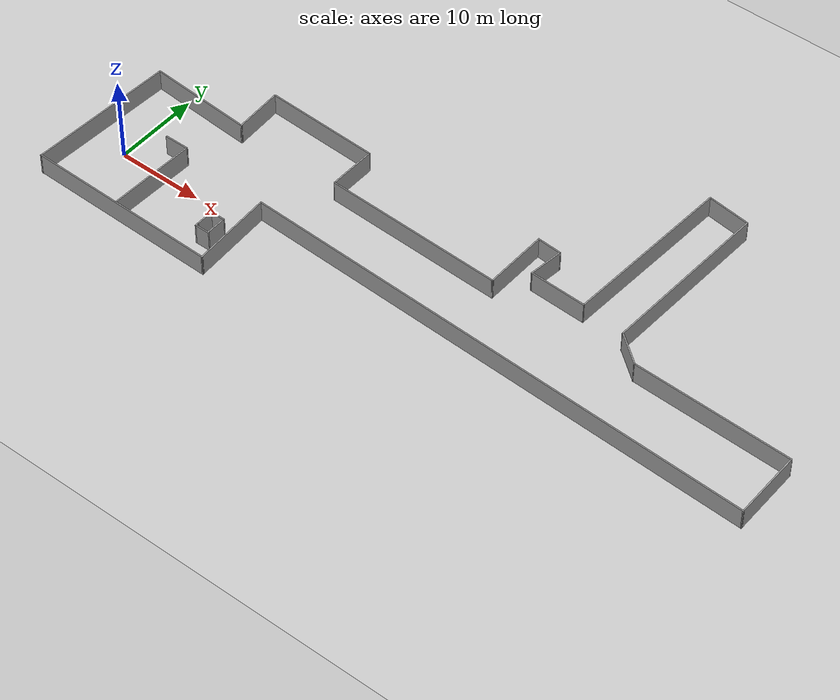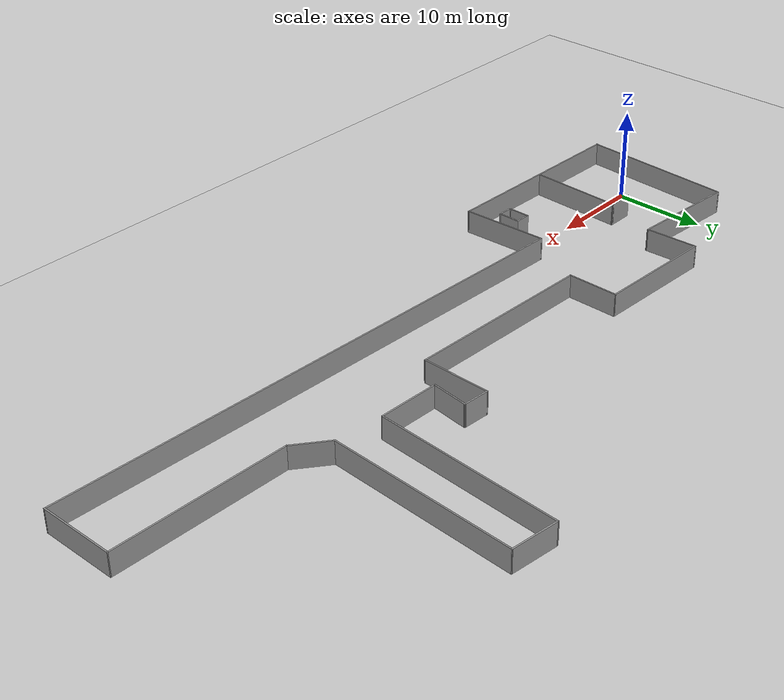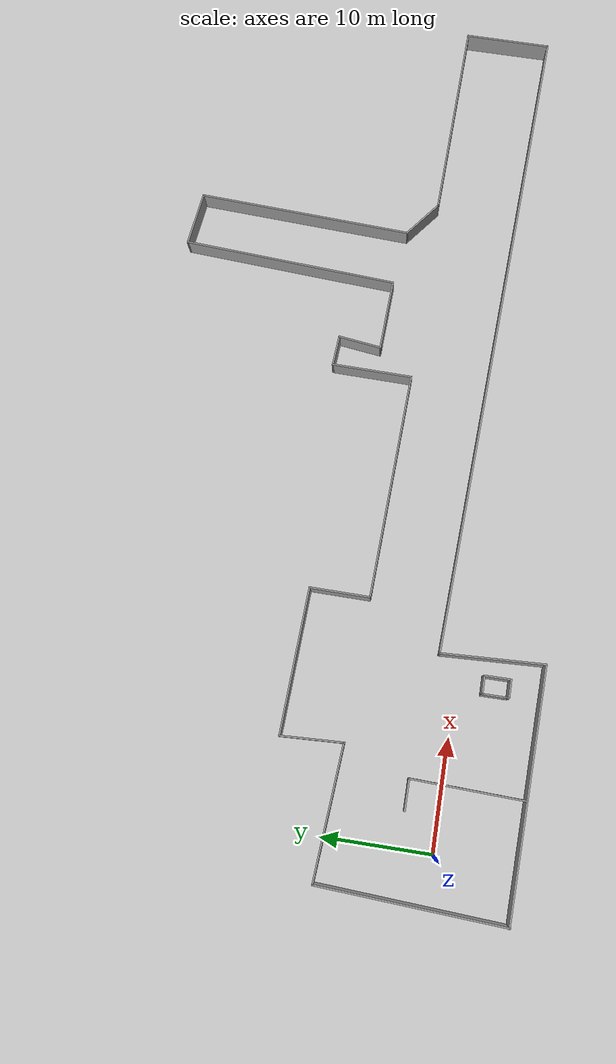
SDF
<sdf version="1.7">
 <world name="default">
  <light name="sun" type="directional">
   <pose>0 0 10 0 -0 0</pose>
   <diffuse>0.8 0.8 0.8 1</diffuse>
   <specular>0.2 0.2 0.2 1</specular>
   <attenuation>
    <range>1000</range>
    <constant>0.9</constant>
    <linear>0.01</linear>
    <quadratic>0.001</quadratic>
   </attenuation>
   <direction>-0.5 0.1 -0.9</direction>
   <spot><inner_angle>0</inner_angle><outer_angle>0</outer_angle><falloff>0</falloff></spot>
  </light>
  <model name="ground_plane">
   <pose>37 0 0 0 -0 0</pose>
   <static>1</static>
   <link name="link">
    <collision name="collision">
     <geometry><plane><normal>0 0 1</normal><size>100 100</size></plane></geometry>
     <surface><friction><ode><mu>100</mu><mu2>50</mu2></ode></friction></surface>
    </collision>
    <visual name="visual">
     <cast_shadows>0</cast_shadows>
     <geometry><plane><normal>0 0 1</normal><size>100 100</size></plane></geometry>
     <material>
      <script><uri>file://media/materials/scripts/gazebo.material</uri><name>Gazebo/Grey</name></script>
     </material>
    </visual>
   </link>
  </model>
  <gravity>0 0 -9.8</gravity>
  <magnetic_field>6e-06 2.3e-05 -4.2e-05</magnetic_field>
  <atmosphere type="adiabatic"/>
  <physics type="ode">
   <max_step_size>0.001</max_step_size>
   <real_time_factor>1</real_time_factor>
   <real_time_update_rate>1000</real_time_update_rate>
  </physics>
  <scene><ambient>0.4 0.4 0.4 1</ambient><background>0.7 0.7 0.7 1</background><shadows>1</shadows></scene>
  <audio><device>default</device></audio>
  <spherical_coordinates>
   <surface_model>EARTH_WGS84</surface_model>
   <latitude_deg>0</latitude_deg>
   <longitude_deg>0</longitude_deg>
   <elevation>0</elevation>
   <heading_deg>0</heading_deg>
  </spherical_coordinates>
  <model name="L1gazeboeditor">
   <pose>36.1632 11.5946 0 0 -0 0</pose>
   <link name="Wall_0">
    <collision name="Wall_0_Collision">
     <geometry><box><size>17.1252 0.15 2.5</size></box></geometry>
     <pose>0 0 1.25 0 -0 0</pose>
    </collision>
    <visual name="Wall_0_Visual">
     <pose>0 0 1.25 0 -0 0</pose>
     <geometry><box><size>17.1252 0.15 2.5</size></box></geometry>
     <material>
      <script><uri>file://media/materials/scripts/gazebo.material</uri><name>Gazebo/Grey</name></script>
      <ambient>1 1 1 1</ambient>
     </material>
     <meta><layer>0</layer></meta>
    </visual>
    <pose>-40.4165 -10.178 0 0 -0 1.5131</pose>
   </link>
   <link name="Wall_1">
    <collision name="Wall_1_Collision">
     <geometry><box><size>12.1719 0.15 2.5</size></box></geometry>
     <pose>0 0 1.25 0 -0 0</pose>
    </collision>
    <visual name="Wall_1_Visual">
     <pose>0 0 1.25 0 -0 0</pose>
     <geometry><box><size>12.1719 0.15 2.5</size></box></geometry>
     <material>
      <script><uri>file://media/materials/scripts/gazebo.material</uri><name>Gazebo/Grey</name></script>
      <ambient>1 1 1 1</ambient>
     </material>
     <meta><layer>0</layer></meta>
    </visual>
    <pose>-33.9314 -2.13275 0 0 -0 -0.071307</pose>
   </link>
   <link name="Wall_12">
    <collision name="Wall_12_Collision">
     <geometry><box><size>19.9454 0.15 2.5</size></box></geometry>
     <pose>0 0 1.25 0 -0 0</pose>
    </collision>
    <visual name="Wall_12_Visual">
     <pose>0 0 1.25 0 -0 0</pose>
     <geometry><box><size>19.9454 0.15 2.5</size></box></geometry>
     <material>
      <script><uri>file://media/materials/scripts/gazebo.material</uri><name>Gazebo/Grey</name></script>
      <ambient>1 1 1 1</ambient>
     </material>
     <meta><layer>0</layer></meta>
    </visual>
    <pose>14.9824 9.21623 0 0 -0 1.51204</pose>
   </link>
   <link name="Wall_13">
    <collision name="Wall_13_Collision">
     <geometry><box><size>5.08253 0.15 2.5</size></box></geometry>
     <pose>0 0 1.25 0 -0 0</pose>
    </collision>
    <visual name="Wall_13_Visual">
     <pose>0 0 1.25 0 -0 0</pose>
     <geometry><box><size>5.08253 0.15 2.5</size></box></geometry>
     <material>
      <script><uri>file://media/materials/scripts/gazebo.material</uri><name>Gazebo/Grey</name></script>
      <ambient>1 1 1 1</ambient>
     </material>
     <meta><layer>0</layer></meta>
    </visual>
    <pose>18.0109 18.791 0 0 -0 -0.124355</pose>
   </link>
   <link name="Wall_14">
    <collision name="Wall_14_Collision">
     <geometry><box><size>19.9326 0.15 2.5</size></box></geometry>
     <pose>0 0 1.25 0 -0 0</pose>
    </collision>
    <visual name="Wall_14_Visual">
     <pose>0 0 1.25 0 -0 0</pose>
     <geometry><box><size>19.9326 0.15 2.5</size></box></geometry>
     <material>
      <script><uri>file://media/materials/scripts/gazebo.material</uri><name>Gazebo/Grey</name></script>
      <ambient>1 1 1 1</ambient>
     </material>
     <meta><layer>0</layer></meta>
    </visual>
    <pose>19.9992 8.60442 0 0 -0 -1.6172</pose>
   </link>
   <link name="Wall_15">
    <collision name="Wall_15_Collision">
     <geometry><box><size>4.20133 0.15 2.5</size></box></geometry>
     <pose>0 0 1.25 0 -0 0</pose>
    </collision>
    <visual name="Wall_15_Visual">
     <pose>0 0 1.25 0 -0 0</pose>
     <geometry><box><size>4.20133 0.15 2.5</size></box></geometry>
     <material>
      <script><uri>file://media/materials/scripts/gazebo.material</uri><name>Gazebo/Grey</name></script>
      <ambient>1 1 1 1</ambient>
     </material>
     <meta><layer>0</layer></meta>
    </visual>
    <pose>21.1311 -2.53042 0 0 -0 -0.667666</pose>
   </link>
   <link name="Wall_16">
    <collision name="Wall_16_Collision">
     <geometry><box><size>18.3883 0.15 2.5</size></box></geometry>
     <pose>0 0 1.25 0 -0 0</pose>
    </collision>
    <visual name="Wall_16_Visual">
     <pose>0 0 1.25 0 -0 0</pose>
     <geometry><box><size>18.3883 0.15 2.5</size></box></geometry>
     <material>
      <script><uri>file://media/materials/scripts/gazebo.material</uri><name>Gazebo/Grey</name></script>
      <ambient>1 1 1 1</ambient>
     </material>
     <meta><layer>0</layer></meta>
    </visual>
    <pose>31.8376 -4.02934 0 0 -0 -0.026839</pose>
   </link>
   <link name="Wall_19">
    <collision name="Wall_19_Collision">
     <geometry><box><size>8 0.15 2.5</size></box></geometry>
     <pose>0 0 1.25 0 -0 0</pose>
    </collision>
    <visual name="Wall_19_Visual">
     <pose>0 0 1.25 0 -0 0</pose>
     <geometry><box><size>8 0.15 2.5</size></box></geometry>
     <material>
      <script><uri>file://media/materials/scripts/gazebo.material</uri><name>Gazebo/Grey</name></script>
      <ambient>1 1 1 1</ambient>
     </material>
     <meta><layer>0</layer></meta>
    </visual>
    <pose>40.9535 -8.19906 0 0 -0 -1.5708</pose>
   </link>
   <link name="Wall_2">
    <collision name="Wall_2_Collision">
     <geometry><box><size>5.78392 0.15 2.5</size></box></geometry>
     <pose>0 0 1.25 0 -0 0</pose>
    </collision>
    <visual name="Wall_2_Visual">
     <pose>0 0 1.25 0 -0 0</pose>
     <geometry><box><size>5.78392 0.15 2.5</size></box></geometry>
     <material>
      <script><uri>file://media/materials/scripts/gazebo.material</uri><name>Gazebo/Grey</name></script>
      <ambient>1 1 1 1</ambient>
     </material>
     <meta><layer>0</layer></meta>
    </visual>
    <pose>-28.058 0.253292 0 0 -0 1.61425</pose>
   </link>
   <link name="Wall_20">
    <collision name="Wall_20_Collision">
     <geometry><box><size>60.2606 0.15 2.5</size></box></geometry>
     <pose>0 0 1.25 0 -0 0</pose>
    </collision>
    <visual name="Wall_20_Visual">
     <pose>0 0 1.25 0 -0 0</pose>
     <geometry><box><size>60.2606 0.15 2.5</size></box></geometry>
     <material>
      <script><uri>file://media/materials/scripts/gazebo.material</uri><name>Gazebo/Grey</name></script>
      <ambient>1 1 1 1</ambient>
     </material>
     <meta><layer>0</layer></meta>
    </visual>
    <pose>10.9223 -10.9204 0 0 -0 3.10153</pose>
   </link>
   <link name="Wall_21">
    <collision name="Wall_21_Collision">
     <geometry><box><size>9.54441 0.15 2.5</size></box></geometry>
     <pose>0 0 1.25 0 -0 0</pose>
    </collision>
    <visual name="Wall_21_Visual">
     <pose>0 0 1.25 0 -0 0</pose>
     <geometry><box><size>9.54441 0.15 2.5</size></box></geometry>
     <material>
      <script><uri>file://media/materials/scripts/gazebo.material</uri><name>Gazebo/Grey</name></script>
      <ambient>1 1 1 1</ambient>
     </material>
     <meta><layer>0</layer></meta>
    </visual>
    <pose>-18.9066 -14.4096 0 0 -0 -1.52772</pose>
   </link>
   <link name="Wall_22">
    <collision name="Wall_22_Collision">
     <geometry><box><size>22.4059 0.15 2.5</size></box></geometry>
     <pose>0 0 1.25 0 -0 0</pose>
    </collision>
    <visual name="Wall_22_Visual">
     <pose>0 0 1.25 0 -0 0</pose>
     <geometry><box><size>22.4059 0.15 2.5</size></box></geometry>
     <material>
      <script><uri>file://media/materials/scripts/gazebo.material</uri><name>Gazebo/Grey</name></script>
      <ambient>1 1 1 1</ambient>
     </material>
     <meta><layer>0</layer></meta>
    </visual>
    <pose>-29.8296 -18.8597 0 0 -0 3.11978</pose>
   </link>
   <link name="Wall_27">
    <collision name="Wall_27_Collision">
     <geometry><box><size>10.3181 0.15 2.5</size></box></geometry>
     <pose>0 0 1.25 0 -0 0</pose>
    </collision>
    <visual name="Wall_27_Visual">
     <pose>0 0 1.25 0 -0 0</pose>
     <geometry><box><size>10.3181 0.15 2.5</size></box></geometry>
     <material>
      <script><uri>file://media/materials/scripts/gazebo.material</uri><name>Gazebo/Grey</name></script>
      <ambient>1 1 1 1</ambient>
     </material>
     <meta><layer>0</layer></meta>
    </visual>
    <pose>-30.2723 -13.649 0 0 -0 1.53416</pose>
   </link>
   <link name="Wall_28">
    <collision name="Wall_28_Collision">
     <geometry><box><size>2.86322 0.15 2.5</size></box></geometry>
     <pose>0 0 1.25 0 -0 0</pose>
    </collision>
    <visual name="Wall_28_Visual">
     <pose>0 0 1.25 0 -0 0</pose>
     <geometry><box><size>2.86322 0.15 2.5</size></box></geometry>
     <material>
      <script><uri>file://media/materials/scripts/gazebo.material</uri><name>Gazebo/Grey</name></script>
      <ambient>1 1 1 1</ambient>
     </material>
     <meta><layer>0</layer></meta>
    </visual>
    <pose>-31.4427 -8.56836 0 0 -0 3.14159</pose>
   </link>
   <link name="Wall_3">
    <collision name="Wall_3_Collision">
     <geometry><box><size>13.2542 0.15 2.5</size></box></geometry>
     <pose>0 0 1.25 0 -0 0</pose>
    </collision>
    <visual name="Wall_3_Visual">
     <pose>0 0 1.25 0 -0 0</pose>
     <geometry><box><size>13.2542 0.15 2.5</size></box></geometry>
     <material>
      <script><uri>file://media/materials/scripts/gazebo.material</uri><name>Gazebo/Grey</name></script>
      <ambient>1 1 1 1</ambient>
     </material>
     <meta><layer>0</layer></meta>
    </visual>
    <pose>-21.6341 2.79228 0 0 -0 -0.042031</pose>
   </link>
   <link name="Wall_30">
    <collision name="Wall_30_Collision">
     <geometry><box><size>2.25 0.15 2.5</size></box></geometry>
     <pose>0 0 1.25 0 -0 0</pose>
    </collision>
    <visual name="Wall_30_Visual">
     <pose>0 0 1.25 0 -0 0</pose>
     <geometry><box><size>2.25 0.15 2.5</size></box></geometry>
     <material>
      <script><uri>file://media/materials/scripts/gazebo.material</uri><name>Gazebo/Grey</name></script>
      <ambient>1 1 1 1</ambient>
     </material>
     <meta><layer>0</layer></meta>
    </visual>
    <pose>-22.0529 -14.9132 0 0 -0 1.5708</pose>
   </link>
   <link name="Wall_31">
    <collision name="Wall_31_Collision">
     <geometry><box><size>1.75 0.15 2.5</size></box></geometry>
     <pose>0 0 1.25 0 -0 0</pose>
    </collision>
    <visual name="Wall_31_Visual">
     <pose>0 0 1.25 0 -0 0</pose>
     <geometry><box><size>1.75 0.15 2.5</size></box></geometry>
     <material>
      <script><uri>file://media/materials/scripts/gazebo.material</uri><name>Gazebo/Grey</name></script>
      <ambient>1 1 1 1</ambient>
     </material>
     <meta><layer>0</layer></meta>
    </visual>
    <pose>-21.2529 -13.8632 0 0 -0 0</pose>
   </link>
   <link name="Wall_32">
    <collision name="Wall_32_Collision">
     <geometry><box><size>2.5 0.15 2.5</size></box></geometry>
     <pose>0 0 1.25 0 -0 0</pose>
    </collision>
    <visual name="Wall_32_Visual">
     <pose>0 0 1.25 0 -0 0</pose>
     <geometry><box><size>2.5 0.15 2.5</size></box></geometry>
     <material>
      <script><uri>file://media/materials/scripts/gazebo.material</uri><name>Gazebo/Grey</name></script>
      <ambient>1 1 1 1</ambient>
     </material>
     <meta><layer>0</layer></meta>
    </visual>
    <pose>-20.4529 -15.0382 0 0 -0 -1.5708</pose>
   </link>
   <link name="Wall_33">
    <collision name="Wall_33_Collision">
     <geometry><box><size>1.75 0.15 2.5</size></box></geometry>
     <pose>0 0 1.25 0 -0 0</pose>
    </collision>
    <visual name="Wall_33_Visual">
     <pose>0 0 1.25 0 -0 0</pose>
     <geometry><box><size>1.75 0.15 2.5</size></box></geometry>
     <material>
      <script><uri>file://media/materials/scripts/gazebo.material</uri><name>Gazebo/Grey</name></script>
      <ambient>1 1 1 1</ambient>
     </material>
     <meta><layer>0</layer></meta>
    </visual>
    <pose>-21.2529 -16.2132 0 0 -0 3.14159</pose>
   </link>
   <link name="Wall_34">
    <collision name="Wall_34_Collision">
     <geometry><box><size>0.4 0.15 2.5</size></box></geometry>
     <pose>0 0 1.25 0 -0 0</pose>
    </collision>
    <visual name="Wall_34_Visual">
     <pose>0 0 1.25 0 -0 0</pose>
     <geometry><box><size>0.4 0.15 2.5</size></box></geometry>
     <material>
      <script><uri>file://media/materials/scripts/gazebo.material</uri><name>Gazebo/Grey</name></script>
      <ambient>1 1 1 1</ambient>
     </material>
     <meta><layer>0</layer></meta>
    </visual>
    <pose>-22.0529 -16.0882 0 0 -0 1.5708</pose>
   </link>
   <link name="Wall_4">
    <collision name="Wall_4_Collision">
     <geometry><box><size>5.59506 0.15 2.5</size></box></geometry>
     <pose>0 0 1.25 0 -0 0</pose>
    </collision>
    <visual name="Wall_4_Visual">
     <pose>0 0 1.25 0 -0 0</pose>
     <geometry><box><size>5.59506 0.15 2.5</size></box></geometry>
     <material>
      <script><uri>file://media/materials/scripts/gazebo.material</uri><name>Gazebo/Grey</name></script>
      <ambient>1 1 1 1</ambient>
     </material>
     <meta><layer>0</layer></meta>
    </visual>
    <pose>-15.1184 -0.205561 0 0 -0 -1.58203</pose>
   </link>
   <link name="Wall_5">
    <collision name="Wall_5_Collision">
     <geometry><box><size>20.842 0.15 2.5</size></box></geometry>
     <pose>0 0 1.25 0 -0 0</pose>
    </collision>
    <visual name="Wall_5_Visual">
     <pose>0 0 1.25 0 -0 0</pose>
     <geometry><box><size>20.842 0.15 2.5</size></box></geometry>
     <material>
      <script><uri>file://media/materials/scripts/gazebo.material</uri><name>Gazebo/Grey</name></script>
      <ambient>1 1 1 1</ambient>
     </material>
     <meta><layer>0</layer></meta>
    </visual>
    <pose>-4.80946 -3.29517 0 0 -0 -0.035488</pose>
   </link>
   <link name="Wall_6">
    <collision name="Wall_6_Collision">
     <geometry><box><size>7.49191 0.15 2.5</size></box></geometry>
     <pose>0 0 1.25 0 -0 0</pose>
    </collision>
    <visual name="Wall_6_Visual">
     <pose>0 0 1.25 0 -0 0</pose>
     <geometry><box><size>7.49191 0.15 2.5</size></box></geometry>
     <material>
      <script><uri>file://media/materials/scripts/gazebo.material</uri><name>Gazebo/Grey</name></script>
      <ambient>1 1 1 1</ambient>
     </material>
     <meta><layer>0</layer></meta>
    </visual>
    <pose>5.59122 0.00857 0 0 -0 1.55413</pose>
   </link>
   <link name="Wall_7">
    <collision name="Wall_7_Collision">
     <geometry><box><size>2.90923 0.15 2.5</size></box></geometry>
     <pose>0 0 1.25 0 -0 0</pose>
    </collision>
    <visual name="Wall_7_Visual">
     <pose>0 0 1.25 0 -0 0</pose>
     <geometry><box><size>2.90923 0.15 2.5</size></box></geometry>
     <material>
      <script><uri>file://media/materials/scripts/gazebo.material</uri><name>Gazebo/Grey</name></script>
      <ambient>1 1 1 1</ambient>
     </material>
     <meta><layer>0</layer></meta>
    </visual>
    <pose>7.02896 3.58763 0 0 -0 -0.066568</pose>
   </link>
   <link name="Wall_8">
    <collision name="Wall_8_Collision">
     <geometry><box><size>4.09602 0.15 2.5</size></box></geometry>
     <pose>0 0 1.25 0 -0 0</pose>
    </collision>
    <visual name="Wall_8_Visual">
     <pose>0 0 1.25 0 -0 0</pose>
     <geometry><box><size>4.09602 0.15 2.5</size></box></geometry>
     <material>
      <script><uri>file://media/materials/scripts/gazebo.material</uri><name>Gazebo/Grey</name></script>
      <ambient>1 1 1 1</ambient>
     </material>
     <meta><layer>0</layer></meta>
    </visual>
    <pose>8.1608 1.53808 0 0 -0 -1.69515</pose>
   </link>
   <link name="Wall_9">
    <collision name="Wall_9_Collision">
     <geometry><box><size>6.63974 0.15 2.5</size></box></geometry>
     <pose>0 0 1.25 0 -0 0</pose>
    </collision>
    <visual name="Wall_9_Visual">
     <pose>0 0 1.25 0 -0 0</pose>
     <geometry><box><size>6.63974 0.15 2.5</size></box></geometry>
     <material>
      <script><uri>file://media/materials/scripts/gazebo.material</uri><name>Gazebo/Grey</name></script>
      <ambient>1 1 1 1</ambient>
     </material>
     <meta><layer>0</layer></meta>
    </visual>
    <pose>11.1586 -0.542054 0 0 -0 -0.037718</pose>
   </link>
   <static>1</static>
  </model>
  <light name="user_point_light_0" type="point">
   <pose>1.47624 7.39131 1 0 -0 0</pose>
   <diffuse>0.5 0.5 0.5 1</diffuse>
   <specular>0.1 0.1 0.1 1</specular>
   <attenuation>
    <range>20</range>
    <constant>0.5</constant>
    <linear>0.01</linear>
    <quadratic>0.001</quadratic>
   </attenuation>
   <cast_shadows>0</cast_shadows>
   <direction>0 0 -1</direction>
  </light>
  <light name="user_point_light_1" type="point">
   <pose>25.0969 5.20634 1 0 -0 0</pose>
   <diffuse>0.5 0.5 0.5 1</diffuse>
   <specular>0.1 0.1 0.1 1</specular>
   <attenuation>
    <range>20</range>
    <constant>0.5</constant>
    <linear>0.01</linear>
    <quadratic>0.001</quadratic>
   </attenuation>
   <cast_shadows>0</cast_shadows>
   <direction>0 0 -1</direction>
  </light>
  <light name="user_point_light_2" type="point">
   <pose>45.05 4.09957 1 0 -0 0</pose>
   <diffuse>0.5 0.5 0.5 1</diffuse>
   <specular>0.1 0.1 0.1 1</specular>
   <attenuation>
    <range>20</range>
    <constant>0.5</constant>
    <linear>0.01</linear>
    <quadratic>0.001</quadratic>
   </attenuation>
   <cast_shadows>0</cast_shadows>
   <direction>0 0 -1</direction>
  </light>
  <light name="user_point_light_3" type="point">
   <pose>66.9779 3.80803 1 0 -0 0</pose>
   <diffuse>0.5 0.5 0.5 1</diffuse>
   <specular>0.1 0.1 0.1 1</specular>
   <attenuation>
    <range>20</range>
    <constant>0.5</constant>
    <linear>0.01</linear>
    <quadratic>0.001</quadratic>
   </attenuation>
   <cast_shadows>0</cast_shadows>
   <direction>0 0 -1</direction>
  </light>
  <light name="user_point_light_4" type="point">
   <pose>53.8721 26.6472 1 0 -0 0</pose>
   <diffuse>0.5 0.5 0.5 1</diffuse>
   <specular>0.1 0.1 0.1 1</specular>
   <attenuation>
    <range>20</range>
    <constant>0.5</constant>
    <linear>0.01</linear>
    <quadratic>0.001</quadratic>
   </attenuation>
   <cast_shadows>0</cast_shadows>
   <direction>0 0 -1</direction>
  </light>
  <light name="user_point_light_5" type="point">
   <pose>1.1525 -3.57117 1 0 -0 0</pose>
   <diffuse>0.5 0.5 0.5 1</diffuse>
   <specular>0.1 0.1 0.1 1</specular>
   <attenuation>
    <range>20</range>
    <constant>0.5</constant>
    <linear>0.01</linear>
    <quadratic>0.001</quadratic>
   </attenuation>
   <cast_shadows>0</cast_shadows>
   <direction>0 0 -1</direction>
  </light>
  <light name="user_point_light_6" type="point">
   <pose>53.5386 13.9984 1 0 -0 0</pose>
   <diffuse>0.5 0.5 0.5 1</diffuse>
   <specular>0.1 0.1 0.1 1</specular>
   <attenuation>
    <range>20</range>
    <constant>0.5</constant>
    <linear>0.01</linear>
    <quadratic>0.001</quadratic>
   </attenuation>
   <cast_shadows>0</cast_shadows>
   <direction>0 0 -1</direction>
  </light>
  <light name="user_point_light_7" type="point">
   <pose>14.7413 10.2518 1 0 -0 0</pose>
   <diffuse>0.5 0.5 0.5 1</diffuse>
   <specular>0.1 0.1 0.1 1</specular>
   <attenuation>
    <range>20</range>
    <constant>0.5</constant>
    <linear>0.01</linear>
    <quadratic>0.001</quadratic>
   </attenuation>
   <cast_shadows>0</cast_shadows>
   <direction>0 0 -1</direction>
  </light>
  <light name="user_point_light_8" type="point">
   <pose>10.7072 -3.76913 1 0 -0 0</pose>
   <diffuse>0.5 0.5 0.5 1</diffuse>
   <specular>0.1 0.1 0.1 1</specular>
   <attenuation>
    <range>20</range>
    <constant>0.5</constant>
    <linear>0.01</linear>
    <quadratic>0.001</quadratic>
   </attenuation>
   <cast_shadows>0</cast_shadows>
   <direction>0 0 -1</direction>
  </light>
 </world>
</sdf>
